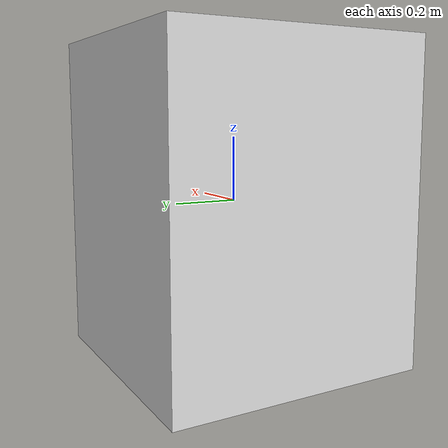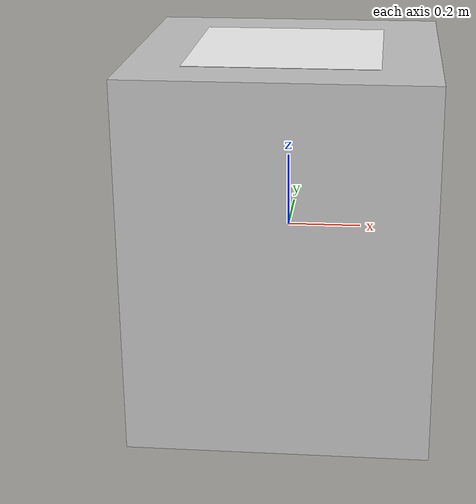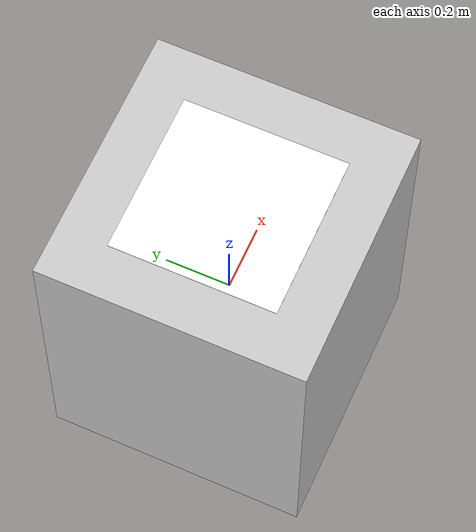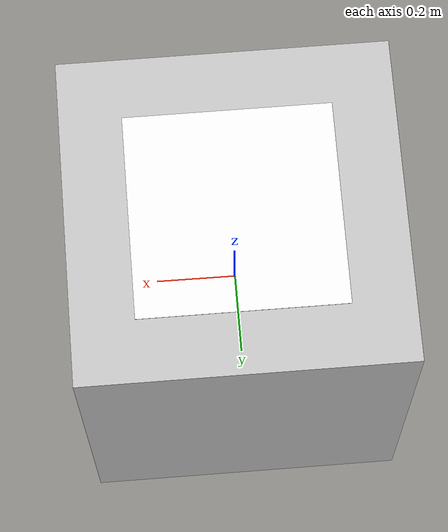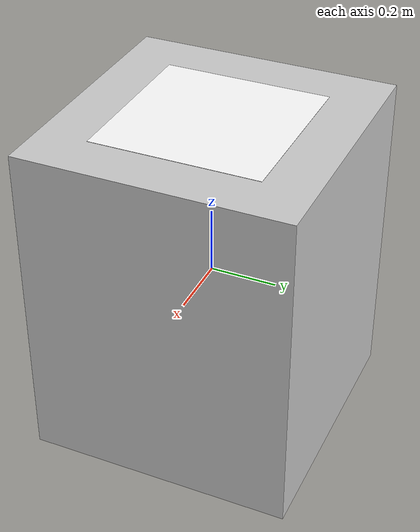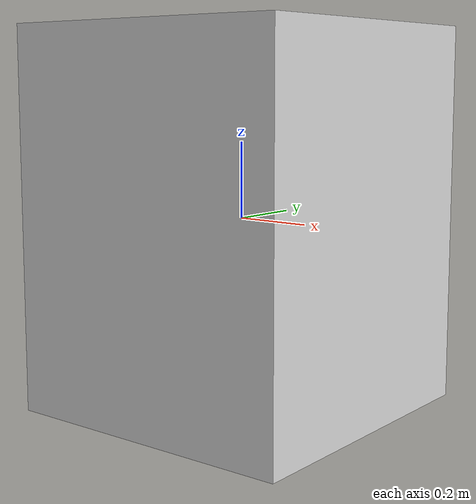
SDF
<?xml version="1.0" ?>
<sdf version="1.9">
  <model name="arucotag">
    <static>true</static>
    <link name="base_link">
      <visual name="platform_visual">
        <pose>0 0 0 0 0 0</pose>
        <geometry>
          <box>
            <size>0.8 0.8 1.0</size>
          </box>
        </geometry>
        <material>
          <ambient>0.8 0.8 0.8 1</ambient>
          <diffuse>0.8 0.8 0.8 1</diffuse>
          <specular>0.2 0.2 0.2 1</specular>
        </material>
      </visual>
      <collision name="platform_collision">
        <pose>0 0 0 0 0 0</pose>
        <geometry>
          <box>
            <size>0.8 0.8 1.0</size>
          </box>
        </geometry>
      </collision>

      <!-- ArUco Marker Texture (On top of 1m box) -->
      <visual name="marker_visual">
        <pose>0 0 0.501 0 0 0</pose>
        <geometry>
          <box>
            <size>0.5 0.5 0.001</size>
          </box>
        </geometry>
        <material>
          <ambient>1 1 1 1</ambient>
          <diffuse>1 1 1 1</diffuse>
          <specular>0.4 0.4 0.4 1</specular>
          <pbr>
            <metal>
              <albedo_map>file:///home/wss/Dev/Robotics/workspaces/uav_ds/ros2_ws/src/uav_simulation/models/arucotag/materials/textures/aruco_marker_0.png</albedo_map>
              <roughness>0.6</roughness>
              <metalness>0.1</metalness>
            </metal>
          </pbr>
        </material>
      </visual>
    </link>
  </model>
</sdf>
